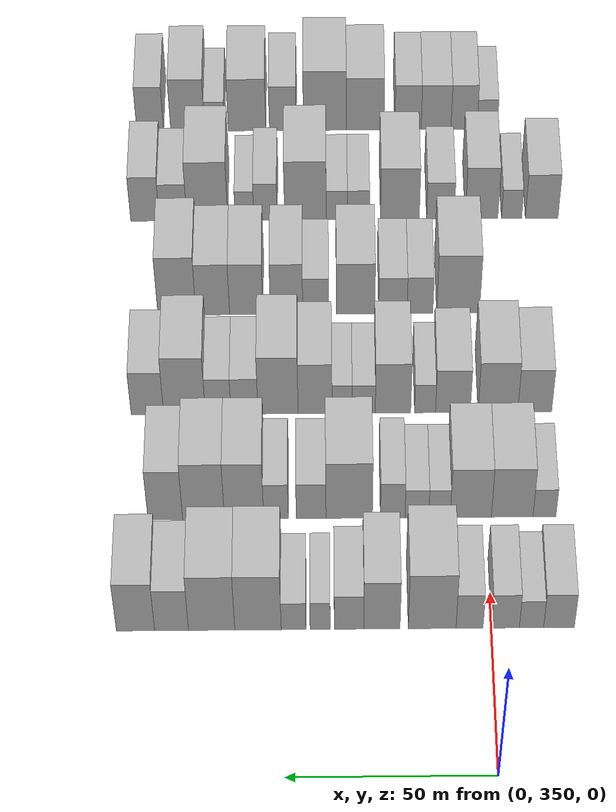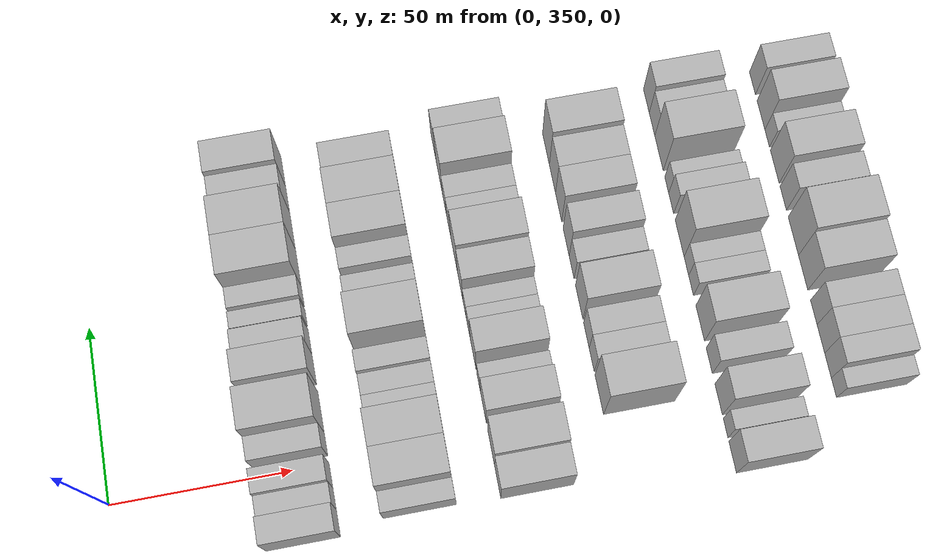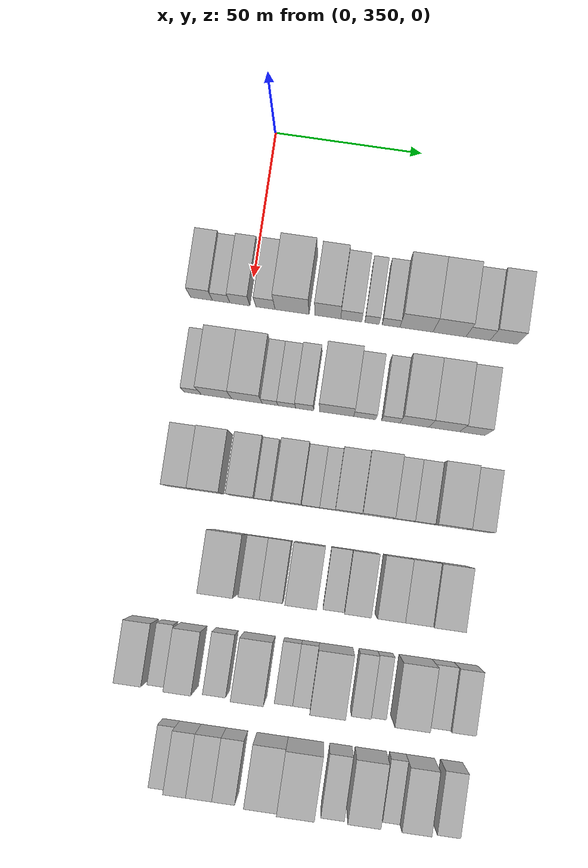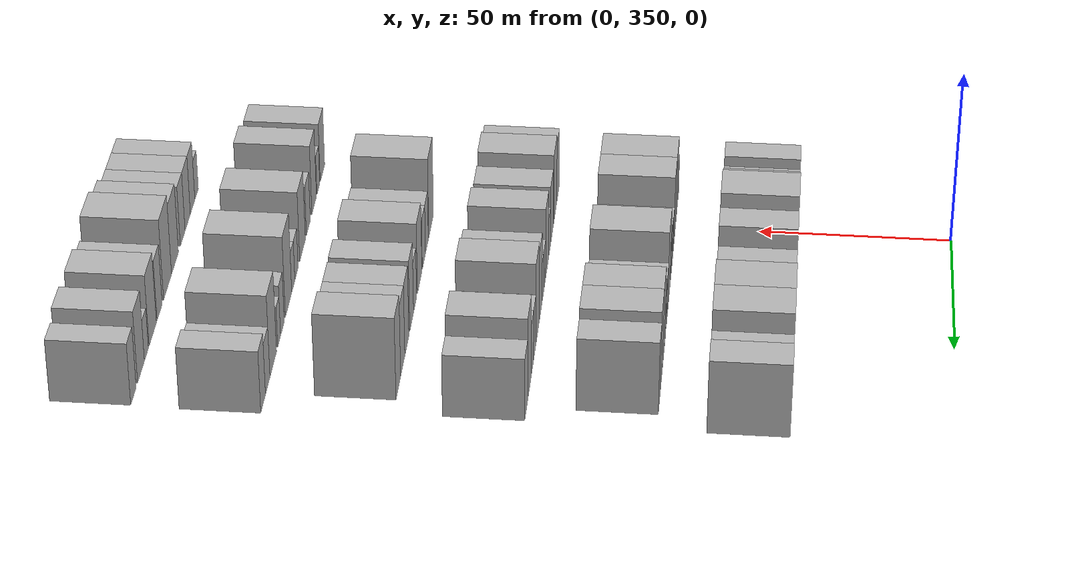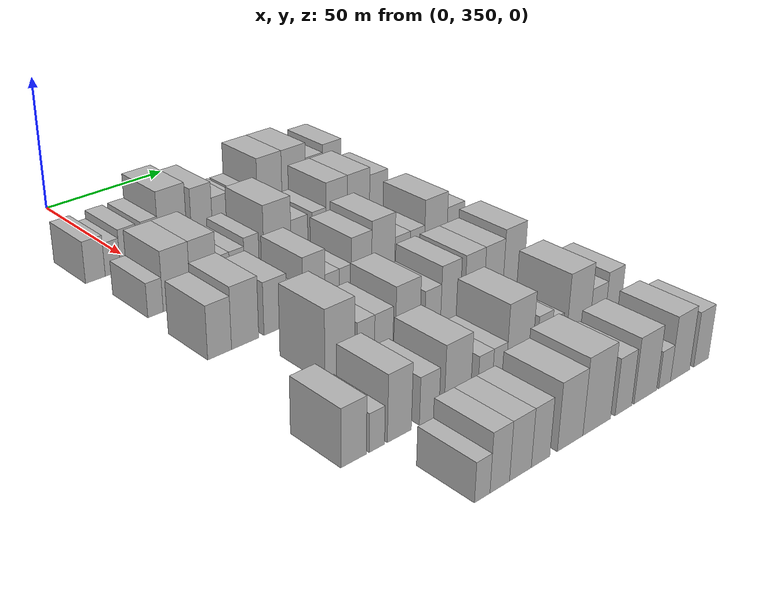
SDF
<sdf version="1.6">
 <world name="default">
  <model name="building_99">
   <static>1</static>
   <pose>50.0000 333.7357 0 0.000000 0.000000 0.000000</pose>
   <link name="link">
    <pose>0 0 7.50 0 0 0</pose>
    <collision name="collision"><geometry><box><size>20.0000 7.4485 15.0000</size></box></geometry></collision>
    <visual name="visual">
     <cast_shadows>0</cast_shadows>
     <geometry><box><size>20.0000 7.4485 15.0000</size></box></geometry>
     <material>
      <script>
       <uri>model://HANNAS_wall/materials/scripts</uri>
       <uri>model://HANNAS_wall/materials/textures</uri>
       <name>vrc/HANNAS_wall</name>
      </script>
     </material>
    </visual>
   </link>
  </model>
  <model name="building_100">
   <static>1</static>
   <pose>50.0000 340.4066 0 0.000000 0.000000 0.000000</pose>
   <link name="link">
    <pose>0 0 6.00 0 0 0</pose>
    <collision name="collision"><geometry><box><size>20.0000 5.8933 12.0000</size></box></geometry></collision>
    <visual name="visual">
     <cast_shadows>0</cast_shadows>
     <geometry><box><size>20.0000 5.8933 12.0000</size></box></geometry>
     <material>
      <script>
       <uri>model://HANNAS_wall/materials/scripts</uri>
       <uri>model://HANNAS_wall/materials/textures</uri>
       <name>vrc/HANNAS_wall</name>
      </script>
     </material>
    </visual>
   </link>
  </model>
  <model name="building_101">
   <static>1</static>
   <pose>50.0000 346.7478 0 0.000000 0.000000 0.000000</pose>
   <link name="link">
    <pose>0 0 7.50 0 0 0</pose>
    <collision name="collision"><geometry><box><size>20.0000 6.7892 15.0000</size></box></geometry></collision>
    <visual name="visual">
     <cast_shadows>0</cast_shadows>
     <geometry><box><size>20.0000 6.7892 15.0000</size></box></geometry>
     <material>
      <script>
       <uri>model://HANNAS_wall/materials/scripts</uri>
       <uri>model://HANNAS_wall/materials/textures</uri>
       <name>vrc/HANNAS_wall</name>
      </script>
     </material>
    </visual>
   </link>
  </model>
  <model name="building_102">
   <static>1</static>
   <pose>50.0000 355.4221 0 0.000000 0.000000 0.000000</pose>
   <link name="link">
    <pose>0 0 7.50 0 0 0</pose>
    <collision name="collision"><geometry><box><size>20.0000 6.5593 15.0000</size></box></geometry></collision>
    <visual name="visual">
     <cast_shadows>0</cast_shadows>
     <geometry><box><size>20.0000 6.5593 15.0000</size></box></geometry>
     <material>
      <script>
       <uri>model://HANNAS_wall/materials/scripts</uri>
       <uri>model://HANNAS_wall/materials/textures</uri>
       <name>vrc/HANNAS_wall</name>
      </script>
     </material>
    </visual>
   </link>
  </model>
  <model name="building_103">
   <static>1</static>
   <pose>50.0000 364.4843 0 0.000000 0.000000 0.000000</pose>
   <link name="link">
    <pose>0 0 12.00 0 0 0</pose>
    <collision name="collision"><geometry><box><size>20.0000 11.5651 24.0000</size></box></geometry></collision>
    <visual name="visual">
     <cast_shadows>0</cast_shadows>
     <geometry><box><size>20.0000 11.5651 24.0000</size></box></geometry>
     <material>
      <script>
       <uri>model://HANNAS_wall/materials/scripts</uri>
       <uri>model://HANNAS_wall/materials/textures</uri>
       <name>vrc/HANNAS_wall</name>
      </script>
     </material>
    </visual>
   </link>
  </model>
  <model name="building_104">
   <static>1</static>
   <pose>50.0000 376.6555 0 0.000000 0.000000 0.000000</pose>
   <link name="link">
    <pose>0 0 10.50 0 0 0</pose>
    <collision name="collision"><geometry><box><size>20.0000 8.7773 21.0000</size></box></geometry></collision>
    <visual name="visual">
     <cast_shadows>0</cast_shadows>
     <geometry><box><size>20.0000 8.7773 21.0000</size></box></geometry>
     <material>
      <script>
       <uri>model://HANNAS_wall/materials/scripts</uri>
       <uri>model://HANNAS_wall/materials/textures</uri>
       <name>vrc/HANNAS_wall</name>
      </script>
     </material>
    </visual>
   </link>
  </model>
  <model name="building_105">
   <static>1</static>
   <pose>50.0000 384.6055 0 0.000000 0.000000 0.000000</pose>
   <link name="link">
    <pose>0 0 7.50 0 0 0</pose>
    <collision name="collision"><geometry><box><size>20.0000 7.1227 15.0000</size></box></geometry></collision>
    <visual name="visual">
     <cast_shadows>0</cast_shadows>
     <geometry><box><size>20.0000 7.1227 15.0000</size></box></geometry>
     <material>
      <script>
       <uri>model://HANNAS_wall/materials/scripts</uri>
       <uri>model://HANNAS_wall/materials/textures</uri>
       <name>vrc/HANNAS_wall</name>
      </script>
     </material>
    </visual>
   </link>
  </model>
  <model name="building_106">
   <static>1</static>
   <pose>50.0000 391.6039 0 0.000000 0.000000 0.000000</pose>
   <link name="link">
    <pose>0 0 6.00 0 0 0</pose>
    <collision name="collision"><geometry><box><size>20.0000 4.8741 12.0000</size></box></geometry></collision>
    <visual name="visual">
     <cast_shadows>0</cast_shadows>
     <geometry><box><size>20.0000 4.8741 12.0000</size></box></geometry>
     <material>
      <script>
       <uri>model://HANNAS_wall/materials/scripts</uri>
       <uri>model://HANNAS_wall/materials/textures</uri>
       <name>vrc/HANNAS_wall</name>
      </script>
     </material>
    </visual>
   </link>
  </model>
  <model name="building_107">
   <static>1</static>
   <pose>50.0000 398.0365 0 0.000000 0.000000 0.000000</pose>
   <link name="link">
    <pose>0 0 6.00 0 0 0</pose>
    <collision name="collision"><geometry><box><size>20.0000 5.9911 12.0000</size></box></geometry></collision>
    <visual name="visual">
     <cast_shadows>0</cast_shadows>
     <geometry><box><size>20.0000 5.9911 12.0000</size></box></geometry>
     <material>
      <script>
       <uri>model://HANNAS_wall/materials/scripts</uri>
       <uri>model://HANNAS_wall/materials/textures</uri>
       <name>vrc/HANNAS_wall</name>
      </script>
     </material>
    </visual>
   </link>
  </model>
  <model name="building_108">
   <static>1</static>
   <pose>50.0000 406.6497 0 0.000000 0.000000 0.000000</pose>
   <link name="link">
    <pose>0 0 12.00 0 0 0</pose>
    <collision name="collision"><geometry><box><size>20.0000 11.2353 24.0000</size></box></geometry></collision>
    <visual name="visual">
     <cast_shadows>0</cast_shadows>
     <geometry><box><size>20.0000 11.2353 24.0000</size></box></geometry>
     <material>
      <script>
       <uri>model://HANNAS_wall/materials/scripts</uri>
       <uri>model://HANNAS_wall/materials/textures</uri>
       <name>vrc/HANNAS_wall</name>
      </script>
     </material>
    </visual>
   </link>
  </model>
  <model name="building_109">
   <static>1</static>
   <pose>50.0000 417.8699 0 0.000000 0.000000 0.000000</pose>
   <link name="link">
    <pose>0 0 12.00 0 0 0</pose>
    <collision name="collision"><geometry><box><size>20.0000 11.2051 24.0000</size></box></geometry></collision>
    <visual name="visual">
     <cast_shadows>0</cast_shadows>
     <geometry><box><size>20.0000 11.2051 24.0000</size></box></geometry>
     <material>
      <script>
       <uri>model://HANNAS_wall/materials/scripts</uri>
       <uri>model://HANNAS_wall/materials/textures</uri>
       <name>vrc/HANNAS_wall</name>
      </script>
     </material>
    </visual>
   </link>
  </model>
  <model name="building_110">
   <static>1</static>
   <pose>50.0000 427.5650 0 0.000000 0.000000 0.000000</pose>
   <link name="link">
    <pose>0 0 9.00 0 0 0</pose>
    <collision name="collision"><geometry><box><size>20.0000 8.1851 18.0000</size></box></geometry></collision>
    <visual name="visual">
     <cast_shadows>0</cast_shadows>
     <geometry><box><size>20.0000 8.1851 18.0000</size></box></geometry>
     <material>
      <script>
       <uri>model://HANNAS_wall/materials/scripts</uri>
       <uri>model://HANNAS_wall/materials/textures</uri>
       <name>vrc/HANNAS_wall</name>
      </script>
     </material>
    </visual>
   </link>
  </model>
  <model name="building_111">
   <static>1</static>
   <pose>50.0000 436.2804 0 0.000000 0.000000 0.000000</pose>
   <link name="link">
    <pose>0 0 10.50 0 0 0</pose>
    <collision name="collision"><geometry><box><size>20.0000 9.2458 21.0000</size></box></geometry></collision>
    <visual name="visual">
     <cast_shadows>0</cast_shadows>
     <geometry><box><size>20.0000 9.2458 21.0000</size></box></geometry>
     <material>
      <script>
       <uri>model://HANNAS_wall/materials/scripts</uri>
       <uri>model://HANNAS_wall/materials/textures</uri>
       <name>vrc/HANNAS_wall</name>
      </script>
     </material>
    </visual>
   </link>
  </model>
  <model name="building_222">
   <static>1</static>
   <pose>82.0000 335.5754 0 0.000000 0.000000 0.000000</pose>
   <link name="link">
    <pose>0 0 6.00 0 0 0</pose>
    <collision name="collision"><geometry><box><size>20.0000 5.7289 12.0000</size></box></geometry></collision>
    <visual name="visual">
     <cast_shadows>0</cast_shadows>
     <geometry><box><size>20.0000 5.7289 12.0000</size></box></geometry>
     <material>
      <script>
       <uri>model://HANNAS_wall/materials/scripts</uri>
       <uri>model://HANNAS_wall/materials/textures</uri>
       <name>vrc/HANNAS_wall</name>
      </script>
     </material>
    </visual>
   </link>
  </model>
  <model name="building_223">
   <static>1</static>
   <pose>82.0000 343.6344 0 0.000000 0.000000 0.000000</pose>
   <link name="link">
    <pose>0 0 10.50 0 0 0</pose>
    <collision name="collision"><geometry><box><size>20.0000 10.3891 21.0000</size></box></geometry></collision>
    <visual name="visual">
     <cast_shadows>0</cast_shadows>
     <geometry><box><size>20.0000 10.3891 21.0000</size></box></geometry>
     <material>
      <script>
       <uri>model://HANNAS_wall/materials/scripts</uri>
       <uri>model://HANNAS_wall/materials/textures</uri>
       <name>vrc/HANNAS_wall</name>
      </script>
     </material>
    </visual>
   </link>
  </model>
  <model name="building_224">
   <static>1</static>
   <pose>82.0000 353.9509 0 0.000000 0.000000 0.000000</pose>
   <link name="link">
    <pose>0 0 10.50 0 0 0</pose>
    <collision name="collision"><geometry><box><size>20.0000 10.2439 21.0000</size></box></geometry></collision>
    <visual name="visual">
     <cast_shadows>0</cast_shadows>
     <geometry><box><size>20.0000 10.2439 21.0000</size></box></geometry>
     <material>
      <script>
       <uri>model://HANNAS_wall/materials/scripts</uri>
       <uri>model://HANNAS_wall/materials/textures</uri>
       <name>vrc/HANNAS_wall</name>
      </script>
     </material>
    </visual>
   </link>
  </model>
  <model name="building_225">
   <static>1</static>
   <pose>82.0000 361.7466 0 0.000000 0.000000 0.000000</pose>
   <link name="link">
    <pose>0 0 6.00 0 0 0</pose>
    <collision name="collision"><geometry><box><size>20.0000 5.3476 12.0000</size></box></geometry></collision>
    <visual name="visual">
     <cast_shadows>0</cast_shadows>
     <geometry><box><size>20.0000 5.3476 12.0000</size></box></geometry>
     <material>
      <script>
       <uri>model://HANNAS_wall/materials/scripts</uri>
       <uri>model://HANNAS_wall/materials/textures</uri>
       <name>vrc/HANNAS_wall</name>
      </script>
     </material>
    </visual>
   </link>
  </model>
  <model name="building_226">
   <static>1</static>
   <pose>82.0000 367.3875 0 0.000000 0.000000 0.000000</pose>
   <link name="link">
    <pose>0 0 6.00 0 0 0</pose>
    <collision name="collision"><geometry><box><size>20.0000 5.9342 12.0000</size></box></geometry></collision>
    <visual name="visual">
     <cast_shadows>0</cast_shadows>
     <geometry><box><size>20.0000 5.9342 12.0000</size></box></geometry>
     <material>
      <script>
       <uri>model://HANNAS_wall/materials/scripts</uri>
       <uri>model://HANNAS_wall/materials/textures</uri>
       <name>vrc/HANNAS_wall</name>
      </script>
     </material>
    </visual>
   </link>
  </model>
  <model name="building_227">
   <static>1</static>
   <pose>82.0000 373.4089 0 0.000000 0.000000 0.000000</pose>
   <link name="link">
    <pose>0 0 7.50 0 0 0</pose>
    <collision name="collision"><geometry><box><size>20.0000 6.1085 15.0000</size></box></geometry></collision>
    <visual name="visual">
     <cast_shadows>0</cast_shadows>
     <geometry><box><size>20.0000 6.1085 15.0000</size></box></geometry>
     <material>
      <script>
       <uri>model://HANNAS_wall/materials/scripts</uri>
       <uri>model://HANNAS_wall/materials/textures</uri>
       <name>vrc/HANNAS_wall</name>
      </script>
     </material>
    </visual>
   </link>
  </model>
  <model name="building_228">
   <static>1</static>
   <pose>82.0000 384.2389 0 0.000000 0.000000 0.000000</pose>
   <link name="link">
    <pose>0 0 12.00 0 0 0</pose>
    <collision name="collision"><geometry><box><size>20.0000 11.5516 24.0000</size></box></geometry></collision>
    <visual name="visual">
     <cast_shadows>0</cast_shadows>
     <geometry><box><size>20.0000 11.5516 24.0000</size></box></geometry>
     <material>
      <script>
       <uri>model://HANNAS_wall/materials/scripts</uri>
       <uri>model://HANNAS_wall/materials/textures</uri>
       <name>vrc/HANNAS_wall</name>
      </script>
     </material>
    </visual>
   </link>
  </model>
  <model name="building_229">
   <static>1</static>
   <pose>82.0000 393.7055 0 0.000000 0.000000 0.000000</pose>
   <link name="link">
    <pose>0 0 7.50 0 0 0</pose>
    <collision name="collision"><geometry><box><size>20.0000 7.3816 15.0000</size></box></geometry></collision>
    <visual name="visual">
     <cast_shadows>0</cast_shadows>
     <geometry><box><size>20.0000 7.3816 15.0000</size></box></geometry>
     <material>
      <script>
       <uri>model://HANNAS_wall/materials/scripts</uri>
       <uri>model://HANNAS_wall/materials/textures</uri>
       <name>vrc/HANNAS_wall</name>
      </script>
     </material>
    </visual>
   </link>
  </model>
  <model name="building_230">
   <static>1</static>
   <pose>82.0000 402.4752 0 0.000000 0.000000 0.000000</pose>
   <link name="link">
    <pose>0 0 7.50 0 0 0</pose>
    <collision name="collision"><geometry><box><size>20.0000 6.1578 15.0000</size></box></geometry></collision>
    <visual name="visual">
     <cast_shadows>0</cast_shadows>
     <geometry><box><size>20.0000 6.1578 15.0000</size></box></geometry>
     <material>
      <script>
       <uri>model://HANNAS_wall/materials/scripts</uri>
       <uri>model://HANNAS_wall/materials/textures</uri>
       <name>vrc/HANNAS_wall</name>
      </script>
     </material>
    </visual>
   </link>
  </model>
  <model name="building_231">
   <static>1</static>
   <pose>82.0000 410.4410 0 0.000000 0.000000 0.000000</pose>
   <link name="link">
    <pose>0 0 12.00 0 0 0</pose>
    <collision name="collision"><geometry><box><size>20.0000 9.7739 24.0000</size></box></geometry></collision>
    <visual name="visual">
     <cast_shadows>0</cast_shadows>
     <geometry><box><size>20.0000 9.7739 24.0000</size></box></geometry>
     <material>
      <script>
       <uri>model://HANNAS_wall/materials/scripts</uri>
       <uri>model://HANNAS_wall/materials/textures</uri>
       <name>vrc/HANNAS_wall</name>
      </script>
     </material>
    </visual>
   </link>
  </model>
  <model name="building_232">
   <static>1</static>
   <pose>82.0000 420.5223 0 0.000000 0.000000 0.000000</pose>
   <link name="link">
    <pose>0 0 12.00 0 0 0</pose>
    <collision name="collision"><geometry><box><size>20.0000 10.3886 24.0000</size></box></geometry></collision>
    <visual name="visual">
     <cast_shadows>0</cast_shadows>
     <geometry><box><size>20.0000 10.3886 24.0000</size></box></geometry>
     <material>
      <script>
       <uri>model://HANNAS_wall/materials/scripts</uri>
       <uri>model://HANNAS_wall/materials/textures</uri>
       <name>vrc/HANNAS_wall</name>
      </script>
     </material>
    </visual>
   </link>
  </model>
  <model name="building_233">
   <static>1</static>
   <pose>82.0000 430.0289 0 0.000000 0.000000 0.000000</pose>
   <link name="link">
    <pose>0 0 10.50 0 0 0</pose>
    <collision name="collision"><geometry><box><size>20.0000 8.6247 21.0000</size></box></geometry></collision>
    <visual name="visual">
     <cast_shadows>0</cast_shadows>
     <geometry><box><size>20.0000 8.6247 21.0000</size></box></geometry>
     <material>
      <script>
       <uri>model://HANNAS_wall/materials/scripts</uri>
       <uri>model://HANNAS_wall/materials/textures</uri>
       <name>vrc/HANNAS_wall</name>
      </script>
     </material>
    </visual>
   </link>
  </model>
  <model name="building_348">
   <static>1</static>
   <pose>114.0000 336.3921 0 0.000000 0.000000 0.000000</pose>
   <link name="link">
    <pose>0 0 9.00 0 0 0</pose>
    <collision name="collision"><geometry><box><size>20.0000 8.6884 18.0000</size></box></geometry></collision>
    <visual name="visual">
     <cast_shadows>0</cast_shadows>
     <geometry><box><size>20.0000 8.6884 18.0000</size></box></geometry>
     <material>
      <script>
       <uri>model://HANNAS_wall/materials/scripts</uri>
       <uri>model://HANNAS_wall/materials/textures</uri>
       <name>vrc/HANNAS_wall</name>
      </script>
     </material>
    </visual>
   </link>
  </model>
  <model name="building_349">
   <static>1</static>
   <pose>114.0000 345.8230 0 0.000000 0.000000 0.000000</pose>
   <link name="link">
    <pose>0 0 10.50 0 0 0</pose>
    <collision name="collision"><geometry><box><size>20.0000 10.1735 21.0000</size></box></geometry></collision>
    <visual name="visual">
     <cast_shadows>0</cast_shadows>
     <geometry><box><size>20.0000 10.1735 21.0000</size></box></geometry>
     <material>
      <script>
       <uri>model://HANNAS_wall/materials/scripts</uri>
       <uri>model://HANNAS_wall/materials/textures</uri>
       <name>vrc/HANNAS_wall</name>
      </script>
     </material>
    </visual>
   </link>
  </model>
  <model name="building_350">
   <static>1</static>
   <pose>114.0000 357.3628 0 0.000000 0.000000 0.000000</pose>
   <link name="link">
    <pose>0 0 9.00 0 0 0</pose>
    <collision name="collision"><geometry><box><size>20.0000 8.9061 18.0000</size></box></geometry></collision>
    <visual name="visual">
     <cast_shadows>0</cast_shadows>
     <geometry><box><size>20.0000 8.9061 18.0000</size></box></geometry>
     <material>
      <script>
       <uri>model://HANNAS_wall/materials/scripts</uri>
       <uri>model://HANNAS_wall/materials/textures</uri>
       <name>vrc/HANNAS_wall</name>
      </script>
     </material>
    </visual>
   </link>
  </model>
  <model name="building_351">
   <static>1</static>
   <pose>114.0000 364.4901 0 0.000000 0.000000 0.000000</pose>
   <link name="link">
    <pose>0 0 6.00 0 0 0</pose>
    <collision name="collision"><geometry><box><size>20.0000 5.3485 12.0000</size></box></geometry></collision>
    <visual name="visual">
     <cast_shadows>0</cast_shadows>
     <geometry><box><size>20.0000 5.3485 12.0000</size></box></geometry>
     <material>
      <script>
       <uri>model://HANNAS_wall/materials/scripts</uri>
       <uri>model://HANNAS_wall/materials/textures</uri>
       <name>vrc/HANNAS_wall</name>
      </script>
     </material>
    </visual>
   </link>
  </model>
  <model name="building_352">
   <static>1</static>
   <pose>114.0000 372.7066 0 0.000000 0.000000 0.000000</pose>
   <link name="link">
    <pose>0 0 10.50 0 0 0</pose>
    <collision name="collision"><geometry><box><size>20.0000 9.0844 21.0000</size></box></geometry></collision>
    <visual name="visual">
     <cast_shadows>0</cast_shadows>
     <geometry><box><size>20.0000 9.0844 21.0000</size></box></geometry>
     <material>
      <script>
       <uri>model://HANNAS_wall/materials/scripts</uri>
       <uri>model://HANNAS_wall/materials/textures</uri>
       <name>vrc/HANNAS_wall</name>
      </script>
     </material>
    </visual>
   </link>
  </model>
  <model name="building_353">
   <static>1</static>
   <pose>114.0000 380.2143 0 0.000000 0.000000 0.000000</pose>
   <link name="link">
    <pose>0 0 6.00 0 0 0</pose>
    <collision name="collision"><geometry><box><size>20.0000 5.9309 12.0000</size></box></geometry></collision>
    <visual name="visual">
     <cast_shadows>0</cast_shadows>
     <geometry><box><size>20.0000 5.9309 12.0000</size></box></geometry>
     <material>
      <script>
       <uri>model://HANNAS_wall/materials/scripts</uri>
       <uri>model://HANNAS_wall/materials/textures</uri>
       <name>vrc/HANNAS_wall</name>
      </script>
     </material>
    </visual>
   </link>
  </model>
  <model name="building_354">
   <static>1</static>
   <pose>114.0000 385.7476 0 0.000000 0.000000 0.000000</pose>
   <link name="link">
    <pose>0 0 6.00 0 0 0</pose>
    <collision name="collision"><geometry><box><size>20.0000 5.1357 12.0000</size></box></geometry></collision>
    <visual name="visual">
     <cast_shadows>0</cast_shadows>
     <geometry><box><size>20.0000 5.1357 12.0000</size></box></geometry>
     <material>
      <script>
       <uri>model://HANNAS_wall/materials/scripts</uri>
       <uri>model://HANNAS_wall/materials/textures</uri>
       <name>vrc/HANNAS_wall</name>
      </script>
     </material>
    </visual>
   </link>
  </model>
  <model name="building_355">
   <static>1</static>
   <pose>114.0000 392.6436 0 0.000000 0.000000 0.000000</pose>
   <link name="link">
    <pose>0 0 10.50 0 0 0</pose>
    <collision name="collision"><geometry><box><size>20.0000 8.6563 21.0000</size></box></geometry></collision>
    <visual name="visual">
     <cast_shadows>0</cast_shadows>
     <geometry><box><size>20.0000 8.6563 21.0000</size></box></geometry>
     <material>
      <script>
       <uri>model://HANNAS_wall/materials/scripts</uri>
       <uri>model://HANNAS_wall/materials/textures</uri>
       <name>vrc/HANNAS_wall</name>
      </script>
     </material>
    </visual>
   </link>
  </model>
  <model name="building_356">
   <static>1</static>
   <pose>114.0000 402.1119 0 0.000000 0.000000 0.000000</pose>
   <link name="link">
    <pose>0 0 12.00 0 0 0</pose>
    <collision name="collision"><geometry><box><size>20.0000 10.2802 24.0000</size></box></geometry></collision>
    <visual name="visual">
     <cast_shadows>0</cast_shadows>
     <geometry><box><size>20.0000 10.2802 24.0000</size></box></geometry>
     <material>
      <script>
       <uri>model://HANNAS_wall/materials/scripts</uri>
       <uri>model://HANNAS_wall/materials/textures</uri>
       <name>vrc/HANNAS_wall</name>
      </script>
     </material>
    </visual>
   </link>
  </model>
  <model name="building_357">
   <static>1</static>
   <pose>114.0000 410.7237 0 0.000000 0.000000 0.000000</pose>
   <link name="link">
    <pose>0 0 7.50 0 0 0</pose>
    <collision name="collision"><geometry><box><size>20.0000 6.9434 15.0000</size></box></geometry></collision>
    <visual name="visual">
     <cast_shadows>0</cast_shadows>
     <geometry><box><size>20.0000 6.9434 15.0000</size></box></geometry>
     <material>
      <script>
       <uri>model://HANNAS_wall/materials/scripts</uri>
       <uri>model://HANNAS_wall/materials/textures</uri>
       <name>vrc/HANNAS_wall</name>
      </script>
     </material>
    </visual>
   </link>
  </model>
  <model name="building_358">
   <static>1</static>
   <pose>114.0000 417.4786 0 0.000000 0.000000 0.000000</pose>
   <link name="link">
    <pose>0 0 7.50 0 0 0</pose>
    <collision name="collision"><geometry><box><size>20.0000 6.5664 15.0000</size></box></geometry></collision>
    <visual name="visual">
     <cast_shadows>0</cast_shadows>
     <geometry><box><size>20.0000 6.5664 15.0000</size></box></geometry>
     <material>
      <script>
       <uri>model://HANNAS_wall/materials/scripts</uri>
       <uri>model://HANNAS_wall/materials/textures</uri>
       <name>vrc/HANNAS_wall</name>
      </script>
     </material>
    </visual>
   </link>
  </model>
  <model name="building_359">
   <static>1</static>
   <pose>114.0000 426.0806 0 0.000000 0.000000 0.000000</pose>
   <link name="link">
    <pose>0 0 12.00 0 0 0</pose>
    <collision name="collision"><geometry><box><size>20.0000 10.6377 24.0000</size></box></geometry></collision>
    <visual name="visual">
     <cast_shadows>0</cast_shadows>
     <geometry><box><size>20.0000 10.6377 24.0000</size></box></geometry>
     <material>
      <script>
       <uri>model://HANNAS_wall/materials/scripts</uri>
       <uri>model://HANNAS_wall/materials/textures</uri>
       <name>vrc/HANNAS_wall</name>
      </script>
     </material>
    </visual>
   </link>
  </model>
  <model name="building_360">
   <static>1</static>
   <pose>114.0000 435.5520 0 0.000000 0.000000 0.000000</pose>
   <link name="link">
    <pose>0 0 9.00 0 0 0</pose>
    <collision name="collision"><geometry><box><size>20.0000 8.3051 18.0000</size></box></geometry></collision>
    <visual name="visual">
     <cast_shadows>0</cast_shadows>
     <geometry><box><size>20.0000 8.3051 18.0000</size></box></geometry>
     <material>
      <script>
       <uri>model://HANNAS_wall/materials/scripts</uri>
       <uri>model://HANNAS_wall/materials/textures</uri>
       <name>vrc/HANNAS_wall</name>
      </script>
     </material>
    </visual>
   </link>
  </model>
  <model name="building_462">
   <static>1</static>
   <pose>146.0000 354.9447 0 0.000000 0.000000 0.000000</pose>
   <link name="link">
    <pose>0 0 12.00 0 0 0</pose>
    <collision name="collision"><geometry><box><size>20.0000 11.2498 24.0000</size></box></geometry></collision>
    <visual name="visual">
     <cast_shadows>0</cast_shadows>
     <geometry><box><size>20.0000 11.2498 24.0000</size></box></geometry>
     <material>
      <script>
       <uri>model://HANNAS_wall/materials/scripts</uri>
       <uri>model://HANNAS_wall/materials/textures</uri>
       <name>vrc/HANNAS_wall</name>
      </script>
     </material>
    </visual>
   </link>
  </model>
  <model name="building_463">
   <static>1</static>
   <pose>146.0000 364.9791 0 0.000000 0.000000 0.000000</pose>
   <link name="link">
    <pose>0 0 7.50 0 0 0</pose>
    <collision name="collision"><geometry><box><size>20.0000 6.8189 15.0000</size></box></geometry></collision>
    <visual name="visual">
     <cast_shadows>0</cast_shadows>
     <geometry><box><size>20.0000 6.8189 15.0000</size></box></geometry>
     <material>
      <script>
       <uri>model://HANNAS_wall/materials/scripts</uri>
       <uri>model://HANNAS_wall/materials/textures</uri>
       <name>vrc/HANNAS_wall</name>
      </script>
     </material>
    </visual>
   </link>
  </model>
  <model name="building_464">
   <static>1</static>
   <pose>146.0000 372.1058 0 0.000000 0.000000 0.000000</pose>
   <link name="link">
    <pose>0 0 7.50 0 0 0</pose>
    <collision name="collision"><geometry><box><size>20.0000 7.4345 15.0000</size></box></geometry></collision>
    <visual name="visual">
     <cast_shadows>0</cast_shadows>
     <geometry><box><size>20.0000 7.4345 15.0000</size></box></geometry>
     <material>
      <script>
       <uri>model://HANNAS_wall/materials/scripts</uri>
       <uri>model://HANNAS_wall/materials/textures</uri>
       <name>vrc/HANNAS_wall</name>
      </script>
     </material>
    </visual>
   </link>
  </model>
  <model name="building_465">
   <static>1</static>
   <pose>146.0000 381.8765 0 0.000000 0.000000 0.000000</pose>
   <link name="link">
    <pose>0 0 10.50 0 0 0</pose>
    <collision name="collision"><geometry><box><size>20.0000 10.1070 21.0000</size></box></geometry></collision>
    <visual name="visual">
     <cast_shadows>0</cast_shadows>
     <geometry><box><size>20.0000 10.1070 21.0000</size></box></geometry>
     <material>
      <script>
       <uri>model://HANNAS_wall/materials/scripts</uri>
       <uri>model://HANNAS_wall/materials/textures</uri>
       <name>vrc/HANNAS_wall</name>
      </script>
     </material>
    </visual>
   </link>
  </model>
  <model name="building_466">
   <static>1</static>
   <pose>146.0000 392.3546 0 0.000000 0.000000 0.000000</pose>
   <link name="link">
    <pose>0 0 7.50 0 0 0</pose>
    <collision name="collision"><geometry><box><size>20.0000 6.8492 15.0000</size></box></geometry></collision>
    <visual name="visual">
     <cast_shadows>0</cast_shadows>
     <geometry><box><size>20.0000 6.8492 15.0000</size></box></geometry>
     <material>
      <script>
       <uri>model://HANNAS_wall/materials/scripts</uri>
       <uri>model://HANNAS_wall/materials/textures</uri>
       <name>vrc/HANNAS_wall</name>
      </script>
     </material>
    </visual>
   </link>
  </model>
  <model name="building_467">
   <static>1</static>
   <pose>146.0000 400.0142 0 0.000000 0.000000 0.000000</pose>
   <link name="link">
    <pose>0 0 10.50 0 0 0</pose>
    <collision name="collision"><geometry><box><size>20.0000 8.4700 21.0000</size></box></geometry></collision>
    <visual name="visual">
     <cast_shadows>0</cast_shadows>
     <geometry><box><size>20.0000 8.4700 21.0000</size></box></geometry>
     <material>
      <script>
       <uri>model://HANNAS_wall/materials/scripts</uri>
       <uri>model://HANNAS_wall/materials/textures</uri>
       <name>vrc/HANNAS_wall</name>
      </script>
     </material>
    </visual>
   </link>
  </model>
  <model name="building_468">
   <static>1</static>
   <pose>146.0000 410.6338 0 0.000000 0.000000 0.000000</pose>
   <link name="link">
    <pose>0 0 10.50 0 0 0</pose>
    <collision name="collision"><geometry><box><size>20.0000 8.7693 21.0000</size></box></geometry></collision>
    <visual name="visual">
     <cast_shadows>0</cast_shadows>
     <geometry><box><size>20.0000 8.7693 21.0000</size></box></geometry>
     <material>
      <script>
       <uri>model://HANNAS_wall/materials/scripts</uri>
       <uri>model://HANNAS_wall/materials/textures</uri>
       <name>vrc/HANNAS_wall</name>
      </script>
     </material>
    </visual>
   </link>
  </model>
  <model name="building_469">
   <static>1</static>
   <pose>146.0000 419.4597 0 0.000000 0.000000 0.000000</pose>
   <link name="link">
    <pose>0 0 10.50 0 0 0</pose>
    <collision name="collision"><geometry><box><size>20.0000 8.8824 21.0000</size></box></geometry></collision>
    <visual name="visual">
     <cast_shadows>0</cast_shadows>
     <geometry><box><size>20.0000 8.8824 21.0000</size></box></geometry>
     <material>
      <script>
       <uri>model://HANNAS_wall/materials/scripts</uri>
       <uri>model://HANNAS_wall/materials/textures</uri>
       <name>vrc/HANNAS_wall</name>
      </script>
     </material>
    </visual>
   </link>
  </model>
  <model name="building_470">
   <static>1</static>
   <pose>146.0000 428.8825 0 0.000000 0.000000 0.000000</pose>
   <link name="link">
    <pose>0 0 12.00 0 0 0</pose>
    <collision name="collision"><geometry><box><size>20.0000 9.9632 24.0000</size></box></geometry></collision>
    <visual name="visual">
     <cast_shadows>0</cast_shadows>
     <geometry><box><size>20.0000 9.9632 24.0000</size></box></geometry>
     <material>
      <script>
       <uri>model://HANNAS_wall/materials/scripts</uri>
       <uri>model://HANNAS_wall/materials/textures</uri>
       <name>vrc/HANNAS_wall</name>
      </script>
     </material>
    </visual>
   </link>
  </model>
  <model name="building_578">
   <static>1</static>
   <pose>178.0000 331.2601 0 0.000000 0.000000 0.000000</pose>
   <link name="link">
    <pose>0 0 9.00 0 0 0</pose>
    <collision name="collision"><geometry><box><size>20.0000 8.8133 18.0000</size></box></geometry></collision>
    <visual name="visual">
     <cast_shadows>0</cast_shadows>
     <geometry><box><size>20.0000 8.8133 18.0000</size></box></geometry>
     <material>
      <script>
       <uri>model://HANNAS_wall/materials/scripts</uri>
       <uri>model://HANNAS_wall/materials/textures</uri>
       <name>vrc/HANNAS_wall</name>
      </script>
     </material>
    </visual>
   </link>
  </model>
  <model name="building_579">
   <static>1</static>
   <pose>178.0000 339.3963 0 0.000000 0.000000 0.000000</pose>
   <link name="link">
    <pose>0 0 6.00 0 0 0</pose>
    <collision name="collision"><geometry><box><size>20.0000 5.4593 12.0000</size></box></geometry></collision>
    <visual name="visual">
     <cast_shadows>0</cast_shadows>
     <geometry><box><size>20.0000 5.4593 12.0000</size></box></geometry>
     <material>
      <script>
       <uri>model://HANNAS_wall/materials/scripts</uri>
       <uri>model://HANNAS_wall/materials/textures</uri>
       <name>vrc/HANNAS_wall</name>
      </script>
     </material>
    </visual>
   </link>
  </model>
  <model name="building_580">
   <static>1</static>
   <pose>178.0000 347.5266 0 0.000000 0.000000 0.000000</pose>
   <link name="link">
    <pose>0 0 10.50 0 0 0</pose>
    <collision name="collision"><geometry><box><size>20.0000 8.8012 21.0000</size></box></geometry></collision>
    <visual name="visual">
     <cast_shadows>0</cast_shadows>
     <geometry><box><size>20.0000 8.8012 21.0000</size></box></geometry>
     <material>
      <script>
       <uri>model://HANNAS_wall/materials/scripts</uri>
       <uri>model://HANNAS_wall/materials/textures</uri>
       <name>vrc/HANNAS_wall</name>
      </script>
     </material>
    </visual>
   </link>
  </model>
  <model name="building_581">
   <static>1</static>
   <pose>178.0000 358.6401 0 0.000000 0.000000 0.000000</pose>
   <link name="link">
    <pose>0 0 7.50 0 0 0</pose>
    <collision name="collision"><geometry><box><size>20.0000 7.4258 15.0000</size></box></geometry></collision>
    <visual name="visual">
     <cast_shadows>0</cast_shadows>
     <geometry><box><size>20.0000 7.4258 15.0000</size></box></geometry>
     <material>
      <script>
       <uri>model://HANNAS_wall/materials/scripts</uri>
       <uri>model://HANNAS_wall/materials/textures</uri>
       <name>vrc/HANNAS_wall</name>
      </script>
     </material>
    </visual>
   </link>
  </model>
  <model name="building_582">
   <static>1</static>
   <pose>178.0000 369.5797 0 0.000000 0.000000 0.000000</pose>
   <link name="link">
    <pose>0 0 10.50 0 0 0</pose>
    <collision name="collision"><geometry><box><size>20.0000 10.4534 21.0000</size></box></geometry></collision>
    <visual name="visual">
     <cast_shadows>0</cast_shadows>
     <geometry><box><size>20.0000 10.4534 21.0000</size></box></geometry>
     <material>
      <script>
       <uri>model://HANNAS_wall/materials/scripts</uri>
       <uri>model://HANNAS_wall/materials/textures</uri>
       <name>vrc/HANNAS_wall</name>
      </script>
     </material>
    </visual>
   </link>
  </model>
  <model name="building_583">
   <static>1</static>
   <pose>178.0000 380.7841 0 0.000000 0.000000 0.000000</pose>
   <link name="link">
    <pose>0 0 6.00 0 0 0</pose>
    <collision name="collision"><geometry><box><size>20.0000 5.9553 12.0000</size></box></geometry></collision>
    <visual name="visual">
     <cast_shadows>0</cast_shadows>
     <geometry><box><size>20.0000 5.9553 12.0000</size></box></geometry>
     <material>
      <script>
       <uri>model://HANNAS_wall/materials/scripts</uri>
       <uri>model://HANNAS_wall/materials/textures</uri>
       <name>vrc/HANNAS_wall</name>
      </script>
     </material>
    </visual>
   </link>
  </model>
  <model name="building_584">
   <static>1</static>
   <pose>178.0000 386.5991 0 0.000000 0.000000 0.000000</pose>
   <link name="link">
    <pose>0 0 6.00 0 0 0</pose>
    <collision name="collision"><geometry><box><size>20.0000 5.6747 12.0000</size></box></geometry></collision>
    <visual name="visual">
     <cast_shadows>0</cast_shadows>
     <geometry><box><size>20.0000 5.6747 12.0000</size></box></geometry>
     <material>
      <script>
       <uri>model://HANNAS_wall/materials/scripts</uri>
       <uri>model://HANNAS_wall/materials/textures</uri>
       <name>vrc/HANNAS_wall</name>
      </script>
     </material>
    </visual>
   </link>
  </model>
  <model name="building_585">
   <static>1</static>
   <pose>178.0000 395.0417 0 0.000000 0.000000 0.000000</pose>
   <link name="link">
    <pose>0 0 12.00 0 0 0</pose>
    <collision name="collision"><geometry><box><size>20.0000 11.2105 24.0000</size></box></geometry></collision>
    <visual name="visual">
     <cast_shadows>0</cast_shadows>
     <geometry><box><size>20.0000 11.2105 24.0000</size></box></geometry>
     <material>
      <script>
       <uri>model://HANNAS_wall/materials/scripts</uri>
       <uri>model://HANNAS_wall/materials/textures</uri>
       <name>vrc/HANNAS_wall</name>
      </script>
     </material>
    </visual>
   </link>
  </model>
  <model name="building_586">
   <static>1</static>
   <pose>178.0000 405.8206 0 0.000000 0.000000 0.000000</pose>
   <link name="link">
    <pose>0 0 7.50 0 0 0</pose>
    <collision name="collision"><geometry><box><size>20.0000 6.3473 15.0000</size></box></geometry></collision>
    <visual name="visual">
     <cast_shadows>0</cast_shadows>
     <geometry><box><size>20.0000 6.3473 15.0000</size></box></geometry>
     <material>
      <script>
       <uri>model://HANNAS_wall/materials/scripts</uri>
       <uri>model://HANNAS_wall/materials/textures</uri>
       <name>vrc/HANNAS_wall</name>
      </script>
     </material>
    </visual>
   </link>
  </model>
  <model name="building_587">
   <static>1</static>
   <pose>178.0000 411.5070 0 0.000000 0.000000 0.000000</pose>
   <link name="link">
    <pose>0 0 6.00 0 0 0</pose>
    <collision name="collision"><geometry><box><size>20.0000 5.0254 12.0000</size></box></geometry></collision>
    <visual name="visual">
     <cast_shadows>0</cast_shadows>
     <geometry><box><size>20.0000 5.0254 12.0000</size></box></geometry>
     <material>
      <script>
       <uri>model://HANNAS_wall/materials/scripts</uri>
       <uri>model://HANNAS_wall/materials/textures</uri>
       <name>vrc/HANNAS_wall</name>
      </script>
     </material>
    </visual>
   </link>
  </model>
  <model name="building_588">
   <static>1</static>
   <pose>178.0000 421.5464 0 0.000000 0.000000 0.000000</pose>
   <link name="link">
    <pose>0 0 12.00 0 0 0</pose>
    <collision name="collision"><geometry><box><size>20.0000 11.0535 24.0000</size></box></geometry></collision>
    <visual name="visual">
     <cast_shadows>0</cast_shadows>
     <geometry><box><size>20.0000 11.0535 24.0000</size></box></geometry>
     <material>
      <script>
       <uri>model://HANNAS_wall/materials/scripts</uri>
       <uri>model://HANNAS_wall/materials/textures</uri>
       <name>vrc/HANNAS_wall</name>
      </script>
     </material>
    </visual>
   </link>
  </model>
  <model name="building_589">
   <static>1</static>
   <pose>178.0000 430.7871 0 0.000000 0.000000 0.000000</pose>
   <link name="link">
    <pose>0 0 7.50 0 0 0</pose>
    <collision name="collision"><geometry><box><size>20.0000 7.4278 15.0000</size></box></geometry></collision>
    <visual name="visual">
     <cast_shadows>0</cast_shadows>
     <geometry><box><size>20.0000 7.4278 15.0000</size></box></geometry>
     <material>
      <script>
       <uri>model://HANNAS_wall/materials/scripts</uri>
       <uri>model://HANNAS_wall/materials/textures</uri>
       <name>vrc/HANNAS_wall</name>
      </script>
     </material>
    </visual>
   </link>
  </model>
  <model name="building_590">
   <static>1</static>
   <pose>178.0000 438.3497 0 0.000000 0.000000 0.000000</pose>
   <link name="link">
    <pose>0 0 9.00 0 0 0</pose>
    <collision name="collision"><geometry><box><size>20.0000 7.6975 18.0000</size></box></geometry></collision>
    <visual name="visual">
     <cast_shadows>0</cast_shadows>
     <geometry><box><size>20.0000 7.6975 18.0000</size></box></geometry>
     <material>
      <script>
       <uri>model://HANNAS_wall/materials/scripts</uri>
       <uri>model://HANNAS_wall/materials/textures</uri>
       <name>vrc/HANNAS_wall</name>
      </script>
     </material>
    </visual>
   </link>
  </model>
  <model name="building_689">
   <static>1</static>
   <pose>210.0000 344.7333 0 0.000000 0.000000 0.000000</pose>
   <link name="link">
    <pose>0 0 6.00 0 0 0</pose>
    <collision name="collision"><geometry><box><size>20.0000 5.5869 12.0000</size></box></geometry></collision>
    <visual name="visual">
     <cast_shadows>0</cast_shadows>
     <geometry><box><size>20.0000 5.5869 12.0000</size></box></geometry>
     <material>
      <script>
       <uri>model://HANNAS_wall/materials/scripts</uri>
       <uri>model://HANNAS_wall/materials/textures</uri>
       <name>vrc/HANNAS_wall</name>
      </script>
     </material>
    </visual>
   </link>
  </model>
  <model name="building_690">
   <static>1</static>
   <pose>210.0000 351.1361 0 0.000000 0.000000 0.000000</pose>
   <link name="link">
    <pose>0 0 9.00 0 0 0</pose>
    <collision name="collision"><geometry><box><size>20.0000 7.2188 18.0000</size></box></geometry></collision>
    <visual name="visual">
     <cast_shadows>0</cast_shadows>
     <geometry><box><size>20.0000 7.2188 18.0000</size></box></geometry>
     <material>
      <script>
       <uri>model://HANNAS_wall/materials/scripts</uri>
       <uri>model://HANNAS_wall/materials/textures</uri>
       <name>vrc/HANNAS_wall</name>
      </script>
     </material>
    </visual>
   </link>
  </model>
  <model name="building_691">
   <static>1</static>
   <pose>210.0000 358.8847 0 0.000000 0.000000 0.000000</pose>
   <link name="link">
    <pose>0 0 9.00 0 0 0</pose>
    <collision name="collision"><geometry><box><size>20.0000 8.2783 18.0000</size></box></geometry></collision>
    <visual name="visual">
     <cast_shadows>0</cast_shadows>
     <geometry><box><size>20.0000 8.2783 18.0000</size></box></geometry>
     <material>
      <script>
       <uri>model://HANNAS_wall/materials/scripts</uri>
       <uri>model://HANNAS_wall/materials/textures</uri>
       <name>vrc/HANNAS_wall</name>
      </script>
     </material>
    </visual>
   </link>
  </model>
  <model name="building_692">
   <static>1</static>
   <pose>210.0000 366.6614 0 0.000000 0.000000 0.000000</pose>
   <link name="link">
    <pose>0 0 9.00 0 0 0</pose>
    <collision name="collision"><geometry><box><size>20.0000 7.2752 18.0000</size></box></geometry></collision>
    <visual name="visual">
     <cast_shadows>0</cast_shadows>
     <geometry><box><size>20.0000 7.2752 18.0000</size></box></geometry>
     <material>
      <script>
       <uri>model://HANNAS_wall/materials/scripts</uri>
       <uri>model://HANNAS_wall/materials/textures</uri>
       <name>vrc/HANNAS_wall</name>
      </script>
     </material>
    </visual>
   </link>
  </model>
  <model name="building_693">
   <static>1</static>
   <pose>210.0000 378.5184 0 0.000000 0.000000 0.000000</pose>
   <link name="link">
    <pose>0 0 10.50 0 0 0</pose>
    <collision name="collision"><geometry><box><size>20.0000 10.4387 21.0000</size></box></geometry></collision>
    <visual name="visual">
     <cast_shadows>0</cast_shadows>
     <geometry><box><size>20.0000 10.4387 21.0000</size></box></geometry>
     <material>
      <script>
       <uri>model://HANNAS_wall/materials/scripts</uri>
       <uri>model://HANNAS_wall/materials/textures</uri>
       <name>vrc/HANNAS_wall</name>
      </script>
     </material>
    </visual>
   </link>
  </model>
  <model name="building_694">
   <static>1</static>
   <pose>210.0000 389.6457 0 0.000000 0.000000 0.000000</pose>
   <link name="link">
    <pose>0 0 12.00 0 0 0</pose>
    <collision name="collision"><geometry><box><size>20.0000 11.8158 24.0000</size></box></geometry></collision>
    <visual name="visual">
     <cast_shadows>0</cast_shadows>
     <geometry><box><size>20.0000 11.8158 24.0000</size></box></geometry>
     <material>
      <script>
       <uri>model://HANNAS_wall/materials/scripts</uri>
       <uri>model://HANNAS_wall/materials/textures</uri>
       <name>vrc/HANNAS_wall</name>
      </script>
     </material>
    </visual>
   </link>
  </model>
  <model name="building_695">
   <static>1</static>
   <pose>210.0000 401.2689 0 0.000000 0.000000 0.000000</pose>
   <link name="link">
    <pose>0 0 9.00 0 0 0</pose>
    <collision name="collision"><geometry><box><size>20.0000 7.4305 18.0000</size></box></geometry></collision>
    <visual name="visual">
     <cast_shadows>0</cast_shadows>
     <geometry><box><size>20.0000 7.4305 18.0000</size></box></geometry>
     <material>
      <script>
       <uri>model://HANNAS_wall/materials/scripts</uri>
       <uri>model://HANNAS_wall/materials/textures</uri>
       <name>vrc/HANNAS_wall</name>
      </script>
     </material>
    </visual>
   </link>
  </model>
  <model name="building_696">
   <static>1</static>
   <pose>210.0000 411.1792 0 0.000000 0.000000 0.000000</pose>
   <link name="link">
    <pose>0 0 10.50 0 0 0</pose>
    <collision name="collision"><geometry><box><size>20.0000 10.3900 21.0000</size></box></geometry></collision>
    <visual name="visual">
     <cast_shadows>0</cast_shadows>
     <geometry><box><size>20.0000 10.3900 21.0000</size></box></geometry>
     <material>
      <script>
       <uri>model://HANNAS_wall/materials/scripts</uri>
       <uri>model://HANNAS_wall/materials/textures</uri>
       <name>vrc/HANNAS_wall</name>
      </script>
     </material>
    </visual>
   </link>
  </model>
  <model name="building_697">
   <static>1</static>
   <pose>210.0000 420.1612 0 0.000000 0.000000 0.000000</pose>
   <link name="link">
    <pose>0 0 6.00 0 0 0</pose>
    <collision name="collision"><geometry><box><size>20.0000 5.5740 12.0000</size></box></geometry></collision>
    <visual name="visual">
     <cast_shadows>0</cast_shadows>
     <geometry><box><size>20.0000 5.5740 12.0000</size></box></geometry>
     <material>
      <script>
       <uri>model://HANNAS_wall/materials/scripts</uri>
       <uri>model://HANNAS_wall/materials/textures</uri>
       <name>vrc/HANNAS_wall</name>
      </script>
     </material>
    </visual>
   </link>
  </model>
  <model name="building_698">
   <static>1</static>
   <pose>210.0000 427.6328 0 0.000000 0.000000 0.000000</pose>
   <link name="link">
    <pose>0 0 10.50 0 0 0</pose>
    <collision name="collision"><geometry><box><size>20.0000 9.3692 21.0000</size></box></geometry></collision>
    <visual name="visual">
     <cast_shadows>0</cast_shadows>
     <geometry><box><size>20.0000 9.3692 21.0000</size></box></geometry>
     <material>
      <script>
       <uri>model://HANNAS_wall/materials/scripts</uri>
       <uri>model://HANNAS_wall/materials/textures</uri>
       <name>vrc/HANNAS_wall</name>
      </script>
     </material>
    </visual>
   </link>
  </model>
  <model name="building_699">
   <static>1</static>
   <pose>210.0000 438.0067 0 0.000000 0.000000 0.000000</pose>
   <link name="link">
    <pose>0 0 9.00 0 0 0</pose>
    <collision name="collision"><geometry><box><size>20.0000 7.3786 18.0000</size></box></geometry></collision>
    <visual name="visual">
     <cast_shadows>0</cast_shadows>
     <geometry><box><size>20.0000 7.3786 18.0000</size></box></geometry>
     <material>
      <script>
       <uri>model://HANNAS_wall/materials/scripts</uri>
       <uri>model://HANNAS_wall/materials/textures</uri>
       <name>vrc/HANNAS_wall</name>
      </script>
     </material>
    </visual>
   </link>
  </model>
 </world>
</sdf>
